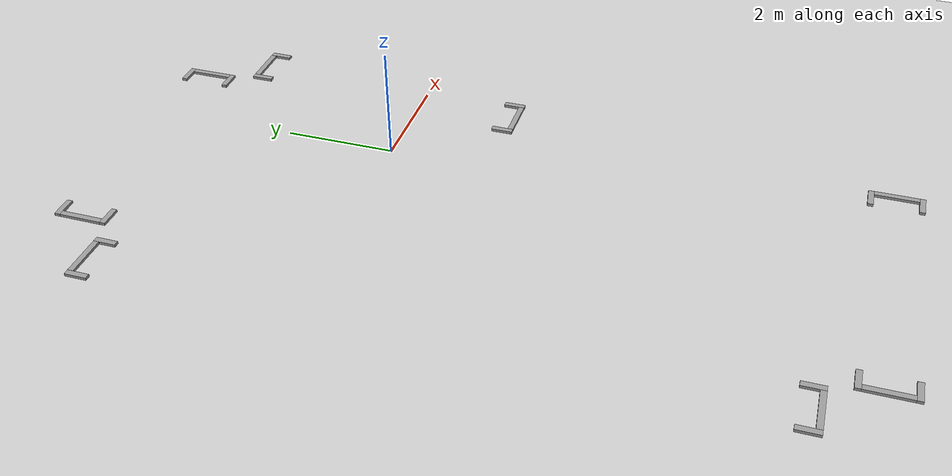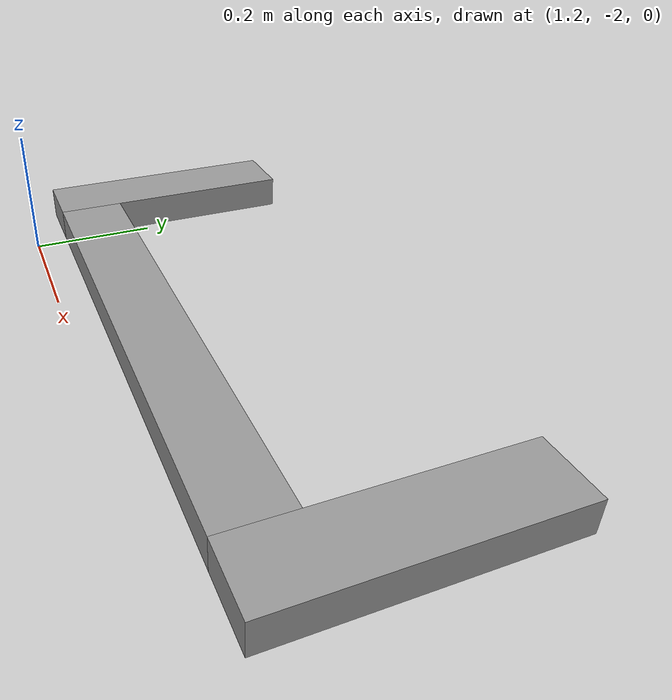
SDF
<sdf version="1.6">
 <world name="default">
  <physics type="ode">
   <max_step_size>0.002</max_step_size>
   <real_time_factor>1</real_time_factor>
   <real_time_update_rate>1000</real_time_update_rate>
   <ode>
    <solver><iters>75</iters><island_threads>4</island_threads></solver>
    <constraints><contact_surface_layer>0.005</contact_surface_layer></constraints>
   </ode>
  </physics>
  <light name="light0" type="directional">
   <pose>0 -18.818 8 0.75 -0 0</pose>
   <diffuse>0.5 0.5 0.5 1</diffuse>
   <specular>0.1 0.1 0.1 1</specular>
   <direction>0.1 0.1 -0.9</direction>
   <attenuation>
    <range>20</range>
    <constant>0.5</constant>
    <linear>0.01</linear>
    <quadratic>0.001</quadratic>
   </attenuation>
   <cast_shadows>0</cast_shadows>
  </light>
  <light name="light3" type="directional">
   <pose>3.9239 1.64974 4 0 1.2 0</pose>
   <diffuse>0.5 0.5 0.5 1</diffuse>
   <specular>0.1 0.1 0.1 1</specular>
   <direction>0.1 0.1 -0.9</direction>
   <attenuation>
    <range>20</range>
    <constant>0.5</constant>
    <linear>0.01</linear>
    <quadratic>0.001</quadratic>
   </attenuation>
   <cast_shadows>0</cast_shadows>
  </light>
  <light name="light5" type="directional">
   <pose>0.454419 12.4783 5 -0.8 0 0</pose>
   <diffuse>0.5 0.5 0.5 1</diffuse>
   <specular>0.1 0.1 0.1 1</specular>
   <direction>0.1 0.1 -0.9</direction>
   <attenuation>
    <range>20</range>
    <constant>0.5</constant>
    <linear>0.01</linear>
    <quadratic>0.001</quadratic>
   </attenuation>
   <cast_shadows>0</cast_shadows>
  </light>
  <scene>
   <shadows>false</shadows>
   <ambient>0.5 0.5 0.5 1.0</ambient>
   <grid>false</grid>
   <sky><time>22</time><sunrise>20</sunrise><sunset>21</sunset><clouds><humidity>0</humidity></clouds></sky>
  </scene>
  <include><uri>model://ground_plane</uri></include>
  <include><uri>model://rack_base</uri><name>rack_base</name><pose>1.421 4.35 0.05 0 -0 -1.57</pose></include>
  <plugin name="gazebo_link_attacher" filename="libgazebo_link_attacher.so"/>
  <plugin name="gazebo_link_ur5_attacher" filename="libgazebo_link_ur5_attacher.so"/>
 </world>
</sdf>

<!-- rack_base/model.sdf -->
<sdf version='1.7'>
  <model name='rack_base'>
    <link name='link'>
      <inertial>
        <pose>0 0 0 0 -0.0 0.0</pose>
        <mass>1.87</mass>
        <inertia>
          <ixx>0.01857</ixx>
          <ixy>0</ixy>
          <ixz>0</ixz>
          <iyy>0.015598</iyy>
          <iyz>0</iyz>
          <izz>0.00305</izz>
        </inertia>
      </inertial>
      <self_collide>0</self_collide>
      <enable_wind>0</enable_wind>
      <kinematic>0</kinematic>
      <pose>0 -0.154224 0 0 -0 0</pose>
      <gravity>1</gravity>
      <visual name='visual_3'>
        <cast_shadows>0</cast_shadows>
        <geometry>
          <box>
            <size>0.1 0.39 0.05</size>
          </box>
        </geometry>
        <material>
          <lighting>1</lighting>
          <script>
            <uri>file://media/materials/scripts/gazebo.material</uri>
            <name>Gazebo/Grey</name>
          </script>
          <shader type='pixel'>
            <normal_map>__default__</normal_map>
          </shader>
          <ambient>0.3 0.3 0.3 1</ambient>
          <diffuse>0.7 0.7 0.7 1</diffuse>
          <specular>0.01 0.01 0.01 1</specular>
          <emissive>0 0 0 1</emissive>
        </material>
        <pose>0.43 0.01 0 0 -0 0</pose>
        <transparency>0</transparency>
      </visual>
      <visual name='visual_4'>
        <cast_shadows>0</cast_shadows>
        <geometry>
          <box>
            <size>0.1 0.39 0.05</size>
          </box>
        </geometry>
        <material>
          <lighting>1</lighting>
          <script>
            <uri>file://media/materials/scripts/gazebo.material</uri>
            <name>Gazebo/Grey</name>
          </script>
          <shader type='pixel'>
            <normal_map>__default__</normal_map>
          </shader>
          <ambient>0.3 0.3 0.3 1</ambient>
          <diffuse>0.7 0.7 0.7 1</diffuse>
          <specular>0.01 0.01 0.01 1</specular>
          <emissive>0 0 0 1</emissive>
        </material>
        <pose>-0.43 0.01 0 0 -0 0</pose>
        <transparency>0</transparency>
      </visual>
      <visual name='visual_1'>
        <cast_shadows>0</cast_shadows>
        <geometry>
          <box>
            <size>0.76 0.1 0.05</size>
          </box>
        </geometry>
        <material>
          <lighting>1</lighting>
          <script>
            <uri>file://media/materials/scripts/gazebo.material</uri>
            <name>Gazebo/Grey</name>
          </script>
          <shader type='pixel'>
            <normal_map>__default__</normal_map>
          </shader>
          <ambient>0.3 0.3 0.3 1</ambient>
          <diffuse>0.7 0.7 0.7 1</diffuse>
          <specular>0.01 0.01 0.01 1</specular>
          <emissive>0 0 0 1</emissive>
        </material>
        <pose>0 0.155 0 0 -0 0</pose>
        <transparency>0</transparency>
      </visual>
      <collision name='collision_7'>
        <laser_retro>0</laser_retro>
        <max_contacts>10</max_contacts>
        <pose>0.43 0.01 0 0 -0 0</pose>
        <geometry>
          <box>
            <size>0.1 0.39 0.05</size>
          </box>
        </geometry>
        <surface>
          <friction>
            <ode>
              <mu>1</mu>
              <mu2>1</mu2>
              <fdir1>0 0 0</fdir1>
              <slip1>0</slip1>
              <slip2>0</slip2>
            </ode>
            <torsional>
              <coefficient>1</coefficient>
              <patch_radius>0</patch_radius>
              <surface_radius>0</surface_radius>
              <use_patch_radius>1</use_patch_radius>
              <ode>
                <slip>0</slip>
              </ode>
            </torsional>
          </friction>
          <bounce>
            <restitution_coefficient>0</restitution_coefficient>
            <threshold>1e+06</threshold>
          </bounce>
          <contact>
            <collide_without_contact>0</collide_without_contact>
            <collide_without_contact_bitmask>1</collide_without_contact_bitmask>
            <collide_bitmask>1</collide_bitmask>
            <ode>
              <soft_cfm>0</soft_cfm>
              <soft_erp>0.2</soft_erp>
              <kp>1e+13</kp>
              <kd>1</kd>
              <max_vel>0.01</max_vel>
              <min_depth>0</min_depth>
            </ode>
            <bullet>
              <split_impulse>1</split_impulse>
              <split_impulse_penetration_threshold>-0.01</split_impulse_penetration_threshold>
              <soft_cfm>0</soft_cfm>
              <soft_erp>0.2</soft_erp>
              <kp>1e+13</kp>
              <kd>1</kd>
            </bullet>
          </contact>
        </surface>
      </collision>
      <collision name='collision_8'>
        <laser_retro>0</laser_retro>
        <max_contacts>10</max_contacts>
        <pose>-0.43 0.01 0 0 -0 0</pose>
        <geometry>
          <box>
            <size>0.1 0.39 0.05</size>
          </box>
        </geometry>
        <surface>
          <friction>
            <ode>
              <mu>1</mu>
              <mu2>1</mu2>
              <fdir1>0 0 0</fdir1>
              <slip1>0</slip1>
              <slip2>0</slip2>
            </ode>
            <torsional>
              <coefficient>1</coefficient>
              <patch_radius>0</patch_radius>
              <surface_radius>0</surface_radius>
              <use_patch_radius>1</use_patch_radius>
              <ode>
                <slip>0</slip>
              </ode>
            </torsional>
          </friction>
          <bounce>
            <restitution_coefficient>0</restitution_coefficient>
            <threshold>1e+06</threshold>
          </bounce>
          <contact>
            <collide_without_contact>0</collide_without_contact>
            <collide_without_contact_bitmask>1</collide_without_contact_bitmask>
            <collide_bitmask>1</collide_bitmask>
            <ode>
              <soft_cfm>0</soft_cfm>
              <soft_erp>0.2</soft_erp>
              <kp>1e+13</kp>
              <kd>1</kd>
              <max_vel>0.01</max_vel>
              <min_depth>0</min_depth>
            </ode>
            <bullet>
              <split_impulse>1</split_impulse>
              <split_impulse_penetration_threshold>-0.01</split_impulse_penetration_threshold>
              <soft_cfm>0</soft_cfm>
              <soft_erp>0.2</soft_erp>
              <kp>1e+13</kp>
              <kd>1</kd>
            </bullet>
          </contact>
        </surface>
      </collision>
      <collision name='collision_6'>
        <laser_retro>0</laser_retro>
        <max_contacts>10</max_contacts>
        <pose>0 0.155 0 0 -0 0</pose>
        <geometry>
          <box>
            <size>0.76 0.1 0.05</size>
          </box>
        </geometry>
        <surface>
          <friction>
            <ode>
              <mu>1</mu>
              <mu2>1</mu2>
              <fdir1>0 0 0</fdir1>
              <slip1>0</slip1>
              <slip2>0</slip2>
            </ode>
            <torsional>
              <coefficient>1</coefficient>
              <patch_radius>0</patch_radius>
              <surface_radius>0</surface_radius>
              <use_patch_radius>1</use_patch_radius>
              <ode>
                <slip>0</slip>
              </ode>
            </torsional>
          </friction>
          <bounce>
            <restitution_coefficient>0</restitution_coefficient>
            <threshold>1e+06</threshold>
          </bounce>
          <contact>
            <collide_without_contact>0</collide_without_contact>
            <collide_without_contact_bitmask>1</collide_without_contact_bitmask>
            <collide_bitmask>1</collide_bitmask>
            <ode>
              <soft_cfm>0</soft_cfm>
              <soft_erp>0.2</soft_erp>
              <kp>1e+13</kp>
              <kd>1</kd>
              <max_vel>0.01</max_vel>
              <min_depth>0</min_depth>
            </ode>
            <bullet>
              <split_impulse>1</split_impulse>
              <split_impulse_penetration_threshold>-0.01</split_impulse_penetration_threshold>
              <soft_cfm>0</soft_cfm>
              <soft_erp>0.2</soft_erp>
              <kp>1e+13</kp>
              <kd>1</kd>
            </bullet>
          </contact>
        </surface>
      </collision>
    </link>
    <link name='link_clone'>
      <inertial>
        <pose>0 0 0 0 -0 0</pose>
        <mass>1.87</mass>
        <inertia>
          <ixx>0.01857</ixx>
          <ixy>0</ixy>
          <ixz>0</ixz>
          <iyy>0.015598</iyy>
          <iyz>0</iyz>
          <izz>0.00305</izz>
        </inertia>
      </inertial>
      <self_collide>0</self_collide>
      <enable_wind>0</enable_wind>
      <kinematic>0</kinematic>
      <pose>1.04088 0.608999 0 0 -0 1.57</pose>
      <gravity>1</gravity>
      <visual name='visual_1'>
        <cast_shadows>0</cast_shadows>
        <geometry>
          <box>
            <size>0.76 0.1 0.05</size>
          </box>
        </geometry>
        <material>
          <lighting>1</lighting>
          <script>
            <uri>file://media/materials/scripts/gazebo.material</uri>
            <name>Gazebo/Grey</name>
          </script>
          <shader type='pixel'>
            <normal_map>__default__</normal_map>
          </shader>
          <ambient>0.3 0.3 0.3 1</ambient>
          <diffuse>0.7 0.7 0.7 1</diffuse>
          <specular>0.01 0.01 0.01 1</specular>
          <emissive>0 0 0 1</emissive>
        </material>
        <pose>0 0.155 0 0 -0 0</pose>
        <transparency>0</transparency>
      </visual>
      <visual name='visual_3'>
        <cast_shadows>0</cast_shadows>
        <geometry>
          <box>
            <size>0.1 0.39 0.05</size>
          </box>
        </geometry>
        <material>
          <lighting>1</lighting>
          <script>
            <uri>file://media/materials/scripts/gazebo.material</uri>
            <name>Gazebo/Grey</name>
          </script>
          <shader type='pixel'>
            <normal_map>__default__</normal_map>
          </shader>
          <ambient>0.3 0.3 0.3 1</ambient>
          <diffuse>0.7 0.7 0.7 1</diffuse>
          <specular>0.01 0.01 0.01 1</specular>
          <emissive>0 0 0 1</emissive>
        </material>
        <pose>0.43 0.01 0 0 -0 0</pose>
        <transparency>0</transparency>
      </visual>
      <visual name='visual_4'>
        <cast_shadows>0</cast_shadows>
        <geometry>
          <box>
            <size>0.1 0.39 0.05</size>
          </box>
        </geometry>
        <material>
          <lighting>1</lighting>
          <script>
            <uri>file://media/materials/scripts/gazebo.material</uri>
            <name>Gazebo/Grey</name>
          </script>
          <shader type='pixel'>
            <normal_map>__default__</normal_map>
          </shader>
          <ambient>0.3 0.3 0.3 1</ambient>
          <diffuse>0.7 0.7 0.7 1</diffuse>
          <specular>0.01 0.01 0.01 1</specular>
          <emissive>0 0 0 1</emissive>
        </material>
        <pose>-0.43 0.01 0 0 -0 0</pose>
        <transparency>0</transparency>
      </visual>
      <collision name='collision_7'>
        <laser_retro>0</laser_retro>
        <max_contacts>10</max_contacts>
        <pose>0.43 0.01 0 0 -0 0</pose>
        <geometry>
          <box>
            <size>0.1 0.39 0.05</size>
          </box>
        </geometry>
        <surface>
          <friction>
            <ode>
              <mu>1</mu>
              <mu2>1</mu2>
              <fdir1>0 0 0</fdir1>
              <slip1>0</slip1>
              <slip2>0</slip2>
            </ode>
            <torsional>
              <coefficient>1</coefficient>
              <patch_radius>0</patch_radius>
              <surface_radius>0</surface_radius>
              <use_patch_radius>1</use_patch_radius>
              <ode>
                <slip>0</slip>
              </ode>
            </torsional>
          </friction>
          <bounce>
            <restitution_coefficient>0</restitution_coefficient>
            <threshold>1e+06</threshold>
          </bounce>
          <contact>
            <collide_without_contact>0</collide_without_contact>
            <collide_without_contact_bitmask>1</collide_without_contact_bitmask>
            <collide_bitmask>1</collide_bitmask>
            <ode>
              <soft_cfm>0</soft_cfm>
              <soft_erp>0.2</soft_erp>
              <kp>1e+13</kp>
              <kd>1</kd>
              <max_vel>0.01</max_vel>
              <min_depth>0</min_depth>
            </ode>
            <bullet>
              <split_impulse>1</split_impulse>
              <split_impulse_penetration_threshold>-0.01</split_impulse_penetration_threshold>
              <soft_cfm>0</soft_cfm>
              <soft_erp>0.2</soft_erp>
              <kp>1e+13</kp>
              <kd>1</kd>
            </bullet>
          </contact>
        </surface>
      </collision>
      <collision name='collision_8'>
        <laser_retro>0</laser_retro>
        <max_contacts>10</max_contacts>
        <pose>-0.43 0.01 0 0 -0 0</pose>
        <geometry>
          <box>
            <size>0.1 0.39 0.05</size>
          </box>
        </geometry>
        <surface>
          <friction>
            <ode>
              <mu>1</mu>
              <mu2>1</mu2>
              <fdir1>0 0 0</fdir1>
              <slip1>0</slip1>
              <slip2>0</slip2>
            </ode>
            <torsional>
              <coefficient>1</coefficient>
              <patch_radius>0</patch_radius>
              <surface_radius>0</surface_radius>
              <use_patch_radius>1</use_patch_radius>
              <ode>
                <slip>0</slip>
              </ode>
            </torsional>
          </friction>
          <bounce>
            <restitution_coefficient>0</restitution_coefficient>
            <threshold>1e+06</threshold>
          </bounce>
          <contact>
            <collide_without_contact>0</collide_without_contact>
            <collide_without_contact_bitmask>1</collide_without_contact_bitmask>
            <collide_bitmask>1</collide_bitmask>
            <ode>
              <soft_cfm>0</soft_cfm>
              <soft_erp>0.2</soft_erp>
              <kp>1e+13</kp>
              <kd>1</kd>
              <max_vel>0.01</max_vel>
              <min_depth>0</min_depth>
            </ode>
            <bullet>
              <split_impulse>1</split_impulse>
              <split_impulse_penetration_threshold>-0.01</split_impulse_penetration_threshold>
              <soft_cfm>0</soft_cfm>
              <soft_erp>0.2</soft_erp>
              <kp>1e+13</kp>
              <kd>1</kd>
            </bullet>
          </contact>
        </surface>
      </collision>
      <collision name='collision_6'>
        <laser_retro>0</laser_retro>
        <max_contacts>10</max_contacts>
        <pose>0 0.155 0 0 -0 0</pose>
        <geometry>
          <box>
            <size>0.76 0.1 0.05</size>
          </box>
        </geometry>
        <surface>
          <friction>
            <ode>
              <mu>1</mu>
              <mu2>1</mu2>
              <fdir1>0 0 0</fdir1>
              <slip1>0</slip1>
              <slip2>0</slip2>
            </ode>
            <torsional>
              <coefficient>1</coefficient>
              <patch_radius>0</patch_radius>
              <surface_radius>0</surface_radius>
              <use_patch_radius>1</use_patch_radius>
              <ode>
                <slip>0</slip>
              </ode>
            </torsional>
          </friction>
          <bounce>
            <restitution_coefficient>0</restitution_coefficient>
            <threshold>1e+06</threshold>
          </bounce>
          <contact>
            <collide_without_contact>0</collide_without_contact>
            <collide_without_contact_bitmask>1</collide_without_contact_bitmask>
            <collide_bitmask>1</collide_bitmask>
            <ode>
              <soft_cfm>0</soft_cfm>
              <soft_erp>0.2</soft_erp>
              <kp>1e+13</kp>
              <kd>1</kd>
              <max_vel>0.01</max_vel>
              <min_depth>0</min_depth>
            </ode>
            <bullet>
              <split_impulse>1</split_impulse>
              <split_impulse_penetration_threshold>-0.01</split_impulse_penetration_threshold>
              <soft_cfm>0</soft_cfm>
              <soft_erp>0.2</soft_erp>
              <kp>1e+13</kp>
              <kd>1</kd>
            </bullet>
          </contact>
        </surface>
      </collision>
    </link>
    <link name='link_clone_clone'>
      <inertial>
        <pose>0 0 0 0 -0 0</pose>
        <mass>1.87</mass>
        <inertia>
          <ixx>0.01857</ixx>
          <ixy>0</ixy>
          <ixz>0</ixz>
          <iyy>0.015598</iyy>
          <iyz>0</iyz>
          <izz>0.00305</izz>
        </inertia>
      </inertial>
      <self_collide>0</self_collide>
      <enable_wind>0</enable_wind>
      <kinematic>0</kinematic>
      <pose>0.063792 -4.66838 0 0 -0 3.14</pose>
      <gravity>1</gravity>
      <visual name='visual_3'>
        <cast_shadows>0</cast_shadows>
        <geometry>
          <box>
            <size>0.1 0.39 0.05</size>
          </box>
        </geometry>
        <material>
          <lighting>1</lighting>
          <script>
            <uri>file://media/materials/scripts/gazebo.material</uri>
            <name>Gazebo/Grey</name>
          </script>
          <shader type='pixel'>
            <normal_map>__default__</normal_map>
          </shader>
          <ambient>0.3 0.3 0.3 1</ambient>
          <diffuse>0.7 0.7 0.7 1</diffuse>
          <specular>0.01 0.01 0.01 1</specular>
          <emissive>0 0 0 1</emissive>
        </material>
        <pose>0.43 0.01 0 0 -0 0</pose>
        <transparency>0</transparency>
      </visual>
      <visual name='visual_1'>
        <cast_shadows>0</cast_shadows>
        <geometry>
          <box>
            <size>0.76 0.1 0.05</size>
          </box>
        </geometry>
        <material>
          <lighting>1</lighting>
          <script>
            <uri>file://media/materials/scripts/gazebo.material</uri>
            <name>Gazebo/Grey</name>
          </script>
          <shader type='pixel'>
            <normal_map>__default__</normal_map>
          </shader>
          <ambient>0.3 0.3 0.3 1</ambient>
          <diffuse>0.7 0.7 0.7 1</diffuse>
          <specular>0.01 0.01 0.01 1</specular>
          <emissive>0 0 0 1</emissive>
        </material>
        <pose>0 0.155 0 0 -0 0</pose>
        <transparency>0</transparency>
      </visual>
      <visual name='visual_4'>
        <cast_shadows>0</cast_shadows>
        <geometry>
          <box>
            <size>0.1 0.39 0.05</size>
          </box>
        </geometry>
        <material>
          <lighting>1</lighting>
          <script>
            <uri>file://media/materials/scripts/gazebo.material</uri>
            <name>Gazebo/Grey</name>
          </script>
          <shader type='pixel'>
            <normal_map>__default__</normal_map>
          </shader>
          <ambient>0.3 0.3 0.3 1</ambient>
          <diffuse>0.7 0.7 0.7 1</diffuse>
          <specular>0.01 0.01 0.01 1</specular>
          <emissive>0 0 0 1</emissive>
        </material>
        <pose>-0.43 0.01 0 0 -0 0</pose>
        <transparency>0</transparency>
      </visual>
      <collision name='collision_8'>
        <laser_retro>0</laser_retro>
        <max_contacts>10</max_contacts>
        <pose>-0.43 0.01 0 0 -0 0</pose>
        <geometry>
          <box>
            <size>0.1 0.39 0.05</size>
          </box>
        </geometry>
        <surface>
          <friction>
            <ode>
              <mu>1</mu>
              <mu2>1</mu2>
              <fdir1>0 0 0</fdir1>
              <slip1>0</slip1>
              <slip2>0</slip2>
            </ode>
            <torsional>
              <coefficient>1</coefficient>
              <patch_radius>0</patch_radius>
              <surface_radius>0</surface_radius>
              <use_patch_radius>1</use_patch_radius>
              <ode>
                <slip>0</slip>
              </ode>
            </torsional>
          </friction>
          <bounce>
            <restitution_coefficient>0</restitution_coefficient>
            <threshold>1e+06</threshold>
          </bounce>
          <contact>
            <collide_without_contact>0</collide_without_contact>
            <collide_without_contact_bitmask>1</collide_without_contact_bitmask>
            <collide_bitmask>1</collide_bitmask>
            <ode>
              <soft_cfm>0</soft_cfm>
              <soft_erp>0.2</soft_erp>
              <kp>1e+13</kp>
              <kd>1</kd>
              <max_vel>0.01</max_vel>
              <min_depth>0</min_depth>
            </ode>
            <bullet>
              <split_impulse>1</split_impulse>
              <split_impulse_penetration_threshold>-0.01</split_impulse_penetration_threshold>
              <soft_cfm>0</soft_cfm>
              <soft_erp>0.2</soft_erp>
              <kp>1e+13</kp>
              <kd>1</kd>
            </bullet>
          </contact>
        </surface>
      </collision>
      <collision name='collision_7'>
        <laser_retro>0</laser_retro>
        <max_contacts>10</max_contacts>
        <pose>0.43 0.01 0 0 -0 0</pose>
        <geometry>
          <box>
            <size>0.1 0.39 0.05</size>
          </box>
        </geometry>
        <surface>
          <friction>
            <ode>
              <mu>1</mu>
              <mu2>1</mu2>
              <fdir1>0 0 0</fdir1>
              <slip1>0</slip1>
              <slip2>0</slip2>
            </ode>
            <torsional>
              <coefficient>1</coefficient>
              <patch_radius>0</patch_radius>
              <surface_radius>0</surface_radius>
              <use_patch_radius>1</use_patch_radius>
              <ode>
                <slip>0</slip>
              </ode>
            </torsional>
          </friction>
          <bounce>
            <restitution_coefficient>0</restitution_coefficient>
            <threshold>1e+06</threshold>
          </bounce>
          <contact>
            <collide_without_contact>0</collide_without_contact>
            <collide_without_contact_bitmask>1</collide_without_contact_bitmask>
            <collide_bitmask>1</collide_bitmask>
            <ode>
              <soft_cfm>0</soft_cfm>
              <soft_erp>0.2</soft_erp>
              <kp>1e+13</kp>
              <kd>1</kd>
              <max_vel>0.01</max_vel>
              <min_depth>0</min_depth>
            </ode>
            <bullet>
              <split_impulse>1</split_impulse>
              <split_impulse_penetration_threshold>-0.01</split_impulse_penetration_threshold>
              <soft_cfm>0</soft_cfm>
              <soft_erp>0.2</soft_erp>
              <kp>1e+13</kp>
              <kd>1</kd>
            </bullet>
          </contact>
        </surface>
      </collision>
      <collision name='collision_6'>
        <laser_retro>0</laser_retro>
        <max_contacts>10</max_contacts>
        <pose>0 0.155 0 0 -0 0</pose>
        <geometry>
          <box>
            <size>0.76 0.1 0.05</size>
          </box>
        </geometry>
        <surface>
          <friction>
            <ode>
              <mu>1</mu>
              <mu2>1</mu2>
              <fdir1>0 0 0</fdir1>
              <slip1>0</slip1>
              <slip2>0</slip2>
            </ode>
            <torsional>
              <coefficient>1</coefficient>
              <patch_radius>0</patch_radius>
              <surface_radius>0</surface_radius>
              <use_patch_radius>1</use_patch_radius>
              <ode>
                <slip>0</slip>
              </ode>
            </torsional>
          </friction>
          <bounce>
            <restitution_coefficient>0</restitution_coefficient>
            <threshold>1e+06</threshold>
          </bounce>
          <contact>
            <collide_without_contact>0</collide_without_contact>
            <collide_without_contact_bitmask>1</collide_without_contact_bitmask>
            <collide_bitmask>1</collide_bitmask>
            <ode>
              <soft_cfm>0</soft_cfm>
              <soft_erp>0.2</soft_erp>
              <kp>1e+13</kp>
              <kd>1</kd>
              <max_vel>0.01</max_vel>
              <min_depth>0</min_depth>
            </ode>
            <bullet>
              <split_impulse>1</split_impulse>
              <split_impulse_penetration_threshold>-0.01</split_impulse_penetration_threshold>
              <soft_cfm>0</soft_cfm>
              <soft_erp>0.2</soft_erp>
              <kp>1e+13</kp>
              <kd>1</kd>
            </bullet>
          </contact>
        </surface>
      </collision>
    </link>
    <link name='link_clone_clone_0'>
      <inertial>
        <pose>0 0 0 0 -0 0</pose>
        <mass>1.87</mass>
        <inertia>
          <ixx>0.01857</ixx>
          <ixy>0</ixy>
          <ixz>0</ixz>
          <iyy>0.015598</iyy>
          <iyz>0</iyz>
          <izz>0.00305</izz>
        </inertia>
      </inertial>
      <self_collide>0</self_collide>
      <enable_wind>0</enable_wind>
      <kinematic>0</kinematic>
      <pose>0.823684 -5.70923 0 0 -0 1.57</pose>
      <gravity>1</gravity>
      <visual name='visual_1'>
        <cast_shadows>0</cast_shadows>
        <geometry>
          <box>
            <size>0.76 0.1 0.05</size>
          </box>
        </geometry>
        <material>
          <lighting>1</lighting>
          <script>
            <uri>file://media/materials/scripts/gazebo.material</uri>
            <name>Gazebo/Grey</name>
          </script>
          <shader type='pixel'>
            <normal_map>__default__</normal_map>
          </shader>
          <ambient>0.3 0.3 0.3 1</ambient>
          <diffuse>0.7 0.7 0.7 1</diffuse>
          <specular>0.01 0.01 0.01 1</specular>
          <emissive>0 0 0 1</emissive>
        </material>
        <pose>0 0.155 0 0 -0 0</pose>
        <transparency>0</transparency>
      </visual>
      <visual name='visual_4'>
        <cast_shadows>0</cast_shadows>
        <geometry>
          <box>
            <size>0.1 0.39 0.05</size>
          </box>
        </geometry>
        <material>
          <lighting>1</lighting>
          <script>
            <uri>file://media/materials/scripts/gazebo.material</uri>
            <name>Gazebo/Grey</name>
          </script>
          <shader type='pixel'>
            <normal_map>__default__</normal_map>
          </shader>
          <ambient>0.3 0.3 0.3 1</ambient>
          <diffuse>0.7 0.7 0.7 1</diffuse>
          <specular>0.01 0.01 0.01 1</specular>
          <emissive>0 0 0 1</emissive>
        </material>
        <pose>-0.43 0.01 0 0 -0 0</pose>
        <transparency>0</transparency>
      </visual>
      <visual name='visual_3'>
        <cast_shadows>0</cast_shadows>
        <geometry>
          <box>
            <size>0.1 0.39 0.05</size>
          </box>
        </geometry>
        <material>
          <lighting>1</lighting>
          <script>
            <uri>file://media/materials/scripts/gazebo.material</uri>
            <name>Gazebo/Grey</name>
          </script>
          <shader type='pixel'>
            <normal_map>__default__</normal_map>
          </shader>
          <ambient>0.3 0.3 0.3 1</ambient>
          <diffuse>0.7 0.7 0.7 1</diffuse>
          <specular>0.01 0.01 0.01 1</specular>
          <emissive>0 0 0 1</emissive>
        </material>
        <pose>0.43 0.01 0 0 -0 0</pose>
        <transparency>0</transparency>
      </visual>
      <collision name='collision_8'>
        <laser_retro>0</laser_retro>
        <max_contacts>10</max_contacts>
        <pose>-0.43 0.01 0 0 -0 0</pose>
        <geometry>
          <box>
            <size>0.1 0.39 0.05</size>
          </box>
        </geometry>
        <surface>
          <friction>
            <ode>
              <mu>1</mu>
              <mu2>1</mu2>
              <fdir1>0 0 0</fdir1>
              <slip1>0</slip1>
              <slip2>0</slip2>
            </ode>
            <torsional>
              <coefficient>1</coefficient>
              <patch_radius>0</patch_radius>
              <surface_radius>0</surface_radius>
              <use_patch_radius>1</use_patch_radius>
              <ode>
                <slip>0</slip>
              </ode>
            </torsional>
          </friction>
          <bounce>
            <restitution_coefficient>0</restitution_coefficient>
            <threshold>1e+06</threshold>
          </bounce>
          <contact>
            <collide_without_contact>0</collide_without_contact>
            <collide_without_contact_bitmask>1</collide_without_contact_bitmask>
            <collide_bitmask>1</collide_bitmask>
            <ode>
              <soft_cfm>0</soft_cfm>
              <soft_erp>0.2</soft_erp>
              <kp>1e+13</kp>
              <kd>1</kd>
              <max_vel>0.01</max_vel>
              <min_depth>0</min_depth>
            </ode>
            <bullet>
              <split_impulse>1</split_impulse>
              <split_impulse_penetration_threshold>-0.01</split_impulse_penetration_threshold>
              <soft_cfm>0</soft_cfm>
              <soft_erp>0.2</soft_erp>
              <kp>1e+13</kp>
              <kd>1</kd>
            </bullet>
          </contact>
        </surface>
      </collision>
      <collision name='collision_6'>
        <laser_retro>0</laser_retro>
        <max_contacts>10</max_contacts>
        <pose>0 0.155 0 0 -0 0</pose>
        <geometry>
          <box>
            <size>0.76 0.1 0.05</size>
          </box>
        </geometry>
        <surface>
          <friction>
            <ode>
              <mu>1</mu>
              <mu2>1</mu2>
              <fdir1>0 0 0</fdir1>
              <slip1>0</slip1>
              <slip2>0</slip2>
            </ode>
            <torsional>
              <coefficient>1</coefficient>
              <patch_radius>0</patch_radius>
              <surface_radius>0</surface_radius>
              <use_patch_radius>1</use_patch_radius>
              <ode>
                <slip>0</slip>
              </ode>
            </torsional>
          </friction>
          <bounce>
            <restitution_coefficient>0</restitution_coefficient>
            <threshold>1e+06</threshold>
          </bounce>
          <contact>
            <collide_without_contact>0</collide_without_contact>
            <collide_without_contact_bitmask>1</collide_without_contact_bitmask>
            <collide_bitmask>1</collide_bitmask>
            <ode>
              <soft_cfm>0</soft_cfm>
              <soft_erp>0.2</soft_erp>
              <kp>1e+13</kp>
              <kd>1</kd>
              <max_vel>0.01</max_vel>
              <min_depth>0</min_depth>
            </ode>
            <bullet>
              <split_impulse>1</split_impulse>
              <split_impulse_penetration_threshold>-0.01</split_impulse_penetration_threshold>
              <soft_cfm>0</soft_cfm>
              <soft_erp>0.2</soft_erp>
              <kp>1e+13</kp>
              <kd>1</kd>
            </bullet>
          </contact>
        </surface>
      </collision>
      <collision name='collision_7'>
        <laser_retro>0</laser_retro>
        <max_contacts>10</max_contacts>
        <pose>0.43 0.01 0 0 -0 0</pose>
        <geometry>
          <box>
            <size>0.1 0.39 0.05</size>
          </box>
        </geometry>
        <surface>
          <friction>
            <ode>
              <mu>1</mu>
              <mu2>1</mu2>
              <fdir1>0 0 0</fdir1>
              <slip1>0</slip1>
              <slip2>0</slip2>
            </ode>
            <torsional>
              <coefficient>1</coefficient>
              <patch_radius>0</patch_radius>
              <surface_radius>0</surface_radius>
              <use_patch_radius>1</use_patch_radius>
              <ode>
                <slip>0</slip>
              </ode>
            </torsional>
          </friction>
          <bounce>
            <restitution_coefficient>0</restitution_coefficient>
            <threshold>1e+06</threshold>
          </bounce>
          <contact>
            <collide_without_contact>0</collide_without_contact>
            <collide_without_contact_bitmask>1</collide_without_contact_bitmask>
            <collide_bitmask>1</collide_bitmask>
            <ode>
              <soft_cfm>0</soft_cfm>
              <soft_erp>0.2</soft_erp>
              <kp>1e+13</kp>
              <kd>1</kd>
              <max_vel>0.01</max_vel>
              <min_depth>0</min_depth>
            </ode>
            <bullet>
              <split_impulse>1</split_impulse>
              <split_impulse_penetration_threshold>-0.01</split_impulse_penetration_threshold>
              <soft_cfm>0</soft_cfm>
              <soft_erp>0.2</soft_erp>
              <kp>1e+13</kp>
              <kd>1</kd>
            </bullet>
          </contact>
        </surface>
      </collision>
    </link>
    <link name='link_clone_clone_1'>
      <inertial>
        <pose>0 0 0 0 -0 0</pose>
        <mass>1.87</mass>
        <inertia>
          <ixx>0.01857</ixx>
          <ixy>0</ixy>
          <ixz>0</ixz>
          <iyy>0.015598</iyy>
          <iyz>0</iyz>
          <izz>0.00305</izz>
        </inertia>
      </inertial>
      <self_collide>0</self_collide>
      <enable_wind>0</enable_wind>
      <kinematic>0</kinematic>
      <pose>13.2129 -0.430131 0 0 -0 0</pose>
      <gravity>1</gravity>
      <visual name='visual_1'>
        <cast_shadows>0</cast_shadows>
        <geometry>
          <box>
            <size>0.76 0.1 0.05</size>
          </box>
        </geometry>
        <material>
          <lighting>1</lighting>
          <script>
            <uri>file://media/materials/scripts/gazebo.material</uri>
            <name>Gazebo/Grey</name>
          </script>
          <shader type='pixel'>
            <normal_map>__default__</normal_map>
          </shader>
          <ambient>0.3 0.3 0.3 1</ambient>
          <diffuse>0.7 0.7 0.7 1</diffuse>
          <specular>0.01 0.01 0.01 1</specular>
          <emissive>0 0 0 1</emissive>
        </material>
        <pose>0 0.155 0 0 -0 0</pose>
        <transparency>0</transparency>
      </visual>
      <visual name='visual_3'>
        <cast_shadows>0</cast_shadows>
        <geometry>
          <box>
            <size>0.1 0.39 0.05</size>
          </box>
        </geometry>
        <material>
          <lighting>1</lighting>
          <script>
            <uri>file://media/materials/scripts/gazebo.material</uri>
            <name>Gazebo/Grey</name>
          </script>
          <shader type='pixel'>
            <normal_map>__default__</normal_map>
          </shader>
          <ambient>0.3 0.3 0.3 1</ambient>
          <diffuse>0.7 0.7 0.7 1</diffuse>
          <specular>0.01 0.01 0.01 1</specular>
          <emissive>0 0 0 1</emissive>
        </material>
        <pose>0.43 0.01 0 0 -0 0</pose>
        <transparency>0</transparency>
      </visual>
      <visual name='visual_4'>
        <cast_shadows>0</cast_shadows>
        <geometry>
          <box>
            <size>0.1 0.39 0.05</size>
          </box>
        </geometry>
        <material>
          <lighting>1</lighting>
          <script>
            <uri>file://media/materials/scripts/gazebo.material</uri>
            <name>Gazebo/Grey</name>
          </script>
          <shader type='pixel'>
            <normal_map>__default__</normal_map>
          </shader>
          <ambient>0.3 0.3 0.3 1</ambient>
          <diffuse>0.7 0.7 0.7 1</diffuse>
          <specular>0.01 0.01 0.01 1</specular>
          <emissive>0 0 0 1</emissive>
        </material>
        <pose>-0.43 0.01 0 0 -0 0</pose>
        <transparency>0</transparency>
      </visual>
      <collision name='collision_7'>
        <laser_retro>0</laser_retro>
        <max_contacts>10</max_contacts>
        <pose>0.43 0.01 0 0 -0 0</pose>
        <geometry>
          <box>
            <size>0.1 0.39 0.05</size>
          </box>
        </geometry>
        <surface>
          <friction>
            <ode>
              <mu>1</mu>
              <mu2>1</mu2>
              <fdir1>0 0 0</fdir1>
              <slip1>0</slip1>
              <slip2>0</slip2>
            </ode>
            <torsional>
              <coefficient>1</coefficient>
              <patch_radius>0</patch_radius>
              <surface_radius>0</surface_radius>
              <use_patch_radius>1</use_patch_radius>
              <ode>
                <slip>0</slip>
              </ode>
            </torsional>
          </friction>
          <bounce>
            <restitution_coefficient>0</restitution_coefficient>
            <threshold>1e+06</threshold>
          </bounce>
          <contact>
            <collide_without_contact>0</collide_without_contact>
            <collide_without_contact_bitmask>1</collide_without_contact_bitmask>
            <collide_bitmask>1</collide_bitmask>
            <ode>
              <soft_cfm>0</soft_cfm>
              <soft_erp>0.2</soft_erp>
              <kp>1e+13</kp>
              <kd>1</kd>
              <max_vel>0.01</max_vel>
              <min_depth>0</min_depth>
            </ode>
            <bullet>
              <split_impulse>1</split_impulse>
              <split_impulse_penetration_threshold>-0.01</split_impulse_penetration_threshold>
              <soft_cfm>0</soft_cfm>
              <soft_erp>0.2</soft_erp>
              <kp>1e+13</kp>
              <kd>1</kd>
            </bullet>
          </contact>
        </surface>
      </collision>
      <collision name='collision_8'>
        <laser_retro>0</laser_retro>
        <max_contacts>10</max_contacts>
        <pose>-0.43 0.01 0 0 -0 0</pose>
        <geometry>
          <box>
            <size>0.1 0.39 0.05</size>
          </box>
        </geometry>
        <surface>
          <friction>
            <ode>
              <mu>1</mu>
              <mu2>1</mu2>
              <fdir1>0 0 0</fdir1>
              <slip1>0</slip1>
              <slip2>0</slip2>
            </ode>
            <torsional>
              <coefficient>1</coefficient>
              <patch_radius>0</patch_radius>
              <surface_radius>0</surface_radius>
              <use_patch_radius>1</use_patch_radius>
              <ode>
                <slip>0</slip>
              </ode>
            </torsional>
          </friction>
          <bounce>
            <restitution_coefficient>0</restitution_coefficient>
            <threshold>1e+06</threshold>
          </bounce>
          <contact>
            <collide_without_contact>0</collide_without_contact>
            <collide_without_contact_bitmask>1</collide_without_contact_bitmask>
            <collide_bitmask>1</collide_bitmask>
            <ode>
              <soft_cfm>0</soft_cfm>
              <soft_erp>0.2</soft_erp>
              <kp>1e+13</kp>
              <kd>1</kd>
              <max_vel>0.01</max_vel>
              <min_depth>0</min_depth>
            </ode>
            <bullet>
              <split_impulse>1</split_impulse>
              <split_impulse_penetration_threshold>-0.01</split_impulse_penetration_threshold>
              <soft_cfm>0</soft_cfm>
              <soft_erp>0.2</soft_erp>
              <kp>1e+13</kp>
              <kd>1</kd>
            </bullet>
          </contact>
        </surface>
      </collision>
      <collision name='collision_6'>
        <laser_retro>0</laser_retro>
        <max_contacts>10</max_contacts>
        <pose>0 0.155 0 0 -0 0</pose>
        <geometry>
          <box>
            <size>0.76 0.1 0.05</size>
          </box>
        </geometry>
        <surface>
          <friction>
            <ode>
              <mu>1</mu>
              <mu2>1</mu2>
              <fdir1>0 0 0</fdir1>
              <slip1>0</slip1>
              <slip2>0</slip2>
            </ode>
            <torsional>
              <coefficient>1</coefficient>
              <patch_radius>0</patch_radius>
              <surface_radius>0</surface_radius>
              <use_patch_radius>1</use_patch_radius>
              <ode>
                <slip>0</slip>
              </ode>
            </torsional>
          </friction>
          <bounce>
            <restitution_coefficient>0</restitution_coefficient>
            <threshold>1e+06</threshold>
          </bounce>
          <contact>
            <collide_without_contact>0</collide_without_contact>
            <collide_without_contact_bitmask>1</collide_without_contact_bitmask>
            <collide_bitmask>1</collide_bitmask>
            <ode>
              <soft_cfm>0</soft_cfm>
              <soft_erp>0.2</soft_erp>
              <kp>1e+13</kp>
              <kd>1</kd>
              <max_vel>0.01</max_vel>
              <min_depth>0</min_depth>
            </ode>
            <bullet>
              <split_impulse>1</split_impulse>
              <split_impulse_penetration_threshold>-0.01</split_impulse_penetration_threshold>
              <soft_cfm>0</soft_cfm>
              <soft_erp>0.2</soft_erp>
              <kp>1e+13</kp>
              <kd>1</kd>
            </bullet>
          </contact>
        </surface>
      </collision>
    </link>
    <link name='link_clone_clone_2'>
      <inertial>
        <pose>0 0 0 0 -0 0</pose>
        <mass>1.87</mass>
        <inertia>
          <ixx>2.02</ixx>
          <ixy>-8.09</ixy>
          <ixz>1.57</ixz>
          <iyy>0.015598</iyy>
          <iyz>0</iyz>
          <izz>0.00305</izz>
        </inertia>
      </inertial>
      <self_collide>0</self_collide>
      <enable_wind>0</enable_wind>
      <kinematic>0</kinematic>
      <pose>6.100000 0.190000 0 -0 0 4.71</pose>
      <gravity>1</gravity>
      <visual name='visual_1'>
        <cast_shadows>0</cast_shadows>
        <geometry>
          <box>
            <size>0.76 0.1 0.05</size>
          </box>
        </geometry>
        <material>
          <lighting>1</lighting>
          <script>
            <uri>file://media/materials/scripts/gazebo.material</uri>
            <name>Gazebo/Grey</name>
          </script>
          <shader type='pixel'>
            <normal_map>__default__</normal_map>
          </shader>
          <ambient>0.3 0.3 0.3 1</ambient>
          <diffuse>0.7 0.7 0.7 1</diffuse>
          <specular>0.01 0.01 0.01 1</specular>
          <emissive>0 0 0 1</emissive>
        </material>
        <pose>0 0.155 0 0 -0 0</pose>
        <transparency>0</transparency>
      </visual>
      <visual name='visual_3'>
        <cast_shadows>0</cast_shadows>
        <geometry>
          <box>
            <size>0.1 0.39 0.05</size>
          </box>
        </geometry>
        <material>
          <lighting>1</lighting>
          <script>
            <uri>file://media/materials/scripts/gazebo.material</uri>
            <name>Gazebo/Grey</name>
          </script>
          <shader type='pixel'>
            <normal_map>__default__</normal_map>
          </shader>
          <ambient>0.3 0.3 0.3 1</ambient>
          <diffuse>0.7 0.7 0.7 1</diffuse>
          <specular>0.01 0.01 0.01 1</specular>
          <emissive>0 0 0 1</emissive>
        </material>
        <pose>0.43 0.01 0 0 -0 0</pose>
        <transparency>0</transparency>
      </visual>
      <visual name='visual_4'>
        <cast_shadows>0</cast_shadows>
        <geometry>
          <box>
            <size>0.1 0.39 0.05</size>
          </box>
        </geometry>
        <material>
          <lighting>1</lighting>
          <script>
            <uri>file://media/materials/scripts/gazebo.material</uri>
            <name>Gazebo/Grey</name>
          </script>
          <shader type='pixel'>
            <normal_map>__default__</normal_map>
          </shader>
          <ambient>0.3 0.3 0.3 1</ambient>
          <diffuse>0.7 0.7 0.7 1</diffuse>
          <specular>0.01 0.01 0.01 1</specular>
          <emissive>0 0 0 1</emissive>
        </material>
        <pose>-0.43 0.01 0 0 -0 0</pose>
        <transparency>0</transparency>
      </visual>
      <collision name='collision_7'>
        <laser_retro>0</laser_retro>
        <max_contacts>10</max_contacts>
        <pose>0.43 0.01 0 0 -0 0</pose>
        <geometry>
          <box>
            <size>0.1 0.39 0.05</size>
          </box>
        </geometry>
        <surface>
          <friction>
            <ode>
              <mu>1</mu>
              <mu2>1</mu2>
              <fdir1>0 0 0</fdir1>
              <slip1>0</slip1>
              <slip2>0</slip2>
            </ode>
            <torsional>
              <coefficient>1</coefficient>
              <patch_radius>0</patch_radius>
              <surface_radius>0</surface_radius>
              <use_patch_radius>1</use_patch_radius>
              <ode>
                <slip>0</slip>
              </ode>
            </torsional>
          </friction>
          <bounce>
            <restitution_coefficient>0</restitution_coefficient>
            <threshold>1e+06</threshold>
          </bounce>
          <contact>
            <collide_without_contact>0</collide_without_contact>
            <collide_without_contact_bitmask>1</collide_without_contact_bitmask>
            <collide_bitmask>1</collide_bitmask>
            <ode>
              <soft_cfm>0</soft_cfm>
              <soft_erp>0.2</soft_erp>
              <kp>1e+13</kp>
              <kd>1</kd>
              <max_vel>0.01</max_vel>
              <min_depth>0</min_depth>
            </ode>
            <bullet>
              <split_impulse>1</split_impulse>
              <split_impulse_penetration_threshold>-0.01</split_impulse_penetration_threshold>
              <soft_cfm>0</soft_cfm>
              <soft_erp>0.2</soft_erp>
              <kp>1e+13</kp>
              <kd>1</kd>
            </bullet>
          </contact>
        </surface>
      </collision>
      <collision name='collision_8'>
        <laser_retro>0</laser_retro>
        <max_contacts>10</max_contacts>
        <pose>-0.43 0.01 0 0 -0 0</pose>
        <geometry>
          <box>
            <size>0.1 0.39 0.05</size>
          </box>
        </geometry>
        <surface>
          <friction>
            <ode>
              <mu>1</mu>
              <mu2>1</mu2>
              <fdir1>0 0 0</fdir1>
              <slip1>0</slip1>
              <slip2>0</slip2>
            </ode>
            <torsional>
              <coefficient>1</coefficient>
              <patch_radius>0</patch_radius>
              <surface_radius>0</surface_radius>
              <use_patch_radius>1</use_patch_radius>
              <ode>
                <slip>0</slip>
              </ode>
            </torsional>
          </friction>
          <bounce>
            <restitution_coefficient>0</restitution_coefficient>
            <threshold>1e+06</threshold>
          </bounce>
          <contact>
            <collide_without_contact>0</collide_without_contact>
            <collide_without_contact_bitmask>1</collide_without_contact_bitmask>
            <collide_bitmask>1</collide_bitmask>
            <ode>
              <soft_cfm>0</soft_cfm>
              <soft_erp>0.2</soft_erp>
              <kp>1e+13</kp>
              <kd>1</kd>
              <max_vel>0.01</max_vel>
              <min_depth>0</min_depth>
            </ode>
            <bullet>
              <split_impulse>1</split_impulse>
              <split_impulse_penetration_threshold>-0.01</split_impulse_penetration_threshold>
              <soft_cfm>0</soft_cfm>
              <soft_erp>0.2</soft_erp>
              <kp>1e+13</kp>
              <kd>1</kd>
            </bullet>
          </contact>
        </surface>
      </collision>
      <collision name='collision_6'>
        <laser_retro>0</laser_retro>
        <max_contacts>10</max_contacts>
        <pose>0 0.155 0 0 -0 0</pose>
        <geometry>
          <box>
            <size>0.76 0.1 0.05</size>
          </box>
        </geometry>
        <surface>
          <friction>
            <ode>
              <mu>1</mu>
              <mu2>1</mu2>
              <fdir1>0 0 0</fdir1>
              <slip1>0</slip1>
              <slip2>0</slip2>
            </ode>
            <torsional>
              <coefficient>1</coefficient>
              <patch_radius>0</patch_radius>
              <surface_radius>0</surface_radius>
              <use_patch_radius>1</use_patch_radius>
              <ode>
                <slip>0</slip>
              </ode>
            </torsional>
          </friction>
          <bounce>
            <restitution_coefficient>0</restitution_coefficient>
            <threshold>1e+06</threshold>
          </bounce>
          <contact>
            <collide_without_contact>0</collide_without_contact>
            <collide_without_contact_bitmask>1</collide_without_contact_bitmask>
            <collide_bitmask>1</collide_bitmask>
            <ode>
              <soft_cfm>0</soft_cfm>
              <soft_erp>0.2</soft_erp>
              <kp>1e+13</kp>
              <kd>1</kd>
              <max_vel>0.01</max_vel>
              <min_depth>0</min_depth>
            </ode>
            <bullet>
              <split_impulse>1</split_impulse>
              <split_impulse_penetration_threshold>-0.01</split_impulse_penetration_threshold>
              <soft_cfm>0</soft_cfm>
              <soft_erp>0.2</soft_erp>
              <kp>1e+13</kp>
              <kd>1</kd>
            </bullet>
          </contact>
        </surface>
      </collision>
    </link>
    <link name='link_clone_clone_3'>
      <inertial>
        <pose>0 0 0 0 -0 0</pose>
        <mass>1.87</mass>
        <inertia>
          <ixx>0.01857</ixx>
          <ixy>0</ixy>
          <ixz>0</ixz>
          <iyy>0.015598</iyy>
          <iyz>0</iyz>
          <izz>0.00305</izz>
        </inertia>
      </inertial>
      <self_collide>0</self_collide>
      <enable_wind>0</enable_wind>
      <kinematic>0</kinematic>
      <pose>13.2418 -4.89365 0 0 -0 3.14</pose>
      <gravity>1</gravity>
      <visual name='visual_1'>
        <cast_shadows>0</cast_shadows>
        <geometry>
          <box>
            <size>0.76 0.1 0.05</size>
          </box>
        </geometry>
        <material>
          <lighting>1</lighting>
          <script>
            <uri>file://media/materials/scripts/gazebo.material</uri>
            <name>Gazebo/Grey</name>
          </script>
          <shader type='pixel'>
            <normal_map>__default__</normal_map>
          </shader>
          <ambient>0.3 0.3 0.3 1</ambient>
          <diffuse>0.7 0.7 0.7 1</diffuse>
          <specular>0.01 0.01 0.01 1</specular>
          <emissive>0 0 0 1</emissive>
        </material>
        <pose>0 0.155 0 0 -0 0</pose>
        <transparency>0</transparency>
      </visual>
      <visual name='visual_3'>
        <cast_shadows>0</cast_shadows>
        <geometry>
          <box>
            <size>0.1 0.39 0.05</size>
          </box>
        </geometry>
        <material>
          <lighting>1</lighting>
          <script>
            <uri>file://media/materials/scripts/gazebo.material</uri>
            <name>Gazebo/Grey</name>
          </script>
          <shader type='pixel'>
            <normal_map>__default__</normal_map>
          </shader>
          <ambient>0.3 0.3 0.3 1</ambient>
          <diffuse>0.7 0.7 0.7 1</diffuse>
          <specular>0.01 0.01 0.01 1</specular>
          <emissive>0 0 0 1</emissive>
        </material>
        <pose>0.43 0.01 0 0 -0 0</pose>
        <transparency>0</transparency>
      </visual>
      <visual name='visual_4'>
        <cast_shadows>0</cast_shadows>
        <geometry>
          <box>
            <size>0.1 0.39 0.05</size>
          </box>
        </geometry>
        <material>
          <lighting>1</lighting>
          <script>
            <uri>file://media/materials/scripts/gazebo.material</uri>
            <name>Gazebo/Grey</name>
          </script>
          <shader type='pixel'>
            <normal_map>__default__</normal_map>
          </shader>
          <ambient>0.3 0.3 0.3 1</ambient>
          <diffuse>0.7 0.7 0.7 1</diffuse>
          <specular>0.01 0.01 0.01 1</specular>
          <emissive>0 0 0 1</emissive>
        </material>
        <pose>-0.43 0.01 0 0 -0 0</pose>
        <transparency>0</transparency>
      </visual>
      <collision name='collision_7'>
        <laser_retro>0</laser_retro>
        <max_contacts>10</max_contacts>
        <pose>0.43 0.01 0 0 -0 0</pose>
        <geometry>
          <box>
            <size>0.1 0.39 0.05</size>
          </box>
        </geometry>
        <surface>
          <friction>
            <ode>
              <mu>1</mu>
              <mu2>1</mu2>
              <fdir1>0 0 0</fdir1>
              <slip1>0</slip1>
              <slip2>0</slip2>
            </ode>
            <torsional>
              <coefficient>1</coefficient>
              <patch_radius>0</patch_radius>
              <surface_radius>0</surface_radius>
              <use_patch_radius>1</use_patch_radius>
              <ode>
                <slip>0</slip>
              </ode>
            </torsional>
          </friction>
          <bounce>
            <restitution_coefficient>0</restitution_coefficient>
            <threshold>1e+06</threshold>
          </bounce>
          <contact>
            <collide_without_contact>0</collide_without_contact>
            <collide_without_contact_bitmask>1</collide_without_contact_bitmask>
            <collide_bitmask>1</collide_bitmask>
            <ode>
              <soft_cfm>0</soft_cfm>
              <soft_erp>0.2</soft_erp>
              <kp>1e+13</kp>
              <kd>1</kd>
              <max_vel>0.01</max_vel>
              <min_depth>0</min_depth>
            </ode>
            <bullet>
              <split_impulse>1</split_impulse>
              <split_impulse_penetration_threshold>-0.01</split_impulse_penetration_threshold>
              <soft_cfm>0</soft_cfm>
              <soft_erp>0.2</soft_erp>
              <kp>1e+13</kp>
              <kd>1</kd>
            </bullet>
          </contact>
        </surface>
      </collision>
      <collision name='collision_8'>
        <laser_retro>0</laser_retro>
        <max_contacts>10</max_contacts>
        <pose>-0.43 0.01 0 0 -0 0</pose>
        <geometry>
          <box>
            <size>0.1 0.39 0.05</size>
          </box>
        </geometry>
        <surface>
          <friction>
            <ode>
              <mu>1</mu>
              <mu2>1</mu2>
              <fdir1>0 0 0</fdir1>
              <slip1>0</slip1>
              <slip2>0</slip2>
            </ode>
            <torsional>
              <coefficient>1</coefficient>
              <patch_radius>0</patch_radius>
              <surface_radius>0</surface_radius>
              <use_patch_radius>1</use_patch_radius>
              <ode>
                <slip>0</slip>
              </ode>
            </torsional>
          </friction>
          <bounce>
            <restitution_coefficient>0</restitution_coefficient>
            <threshold>1e+06</threshold>
          </bounce>
          <contact>
            <collide_without_contact>0</collide_without_contact>
            <collide_without_contact_bitmask>1</collide_without_contact_bitmask>
            <collide_bitmask>1</collide_bitmask>
            <ode>
              <soft_cfm>0</soft_cfm>
              <soft_erp>0.2</soft_erp>
              <kp>1e+13</kp>
              <kd>1</kd>
              <max_vel>0.01</max_vel>
              <min_depth>0</min_depth>
            </ode>
            <bullet>
              <split_impulse>1</split_impulse>
              <split_impulse_penetration_threshold>-0.01</split_impulse_penetration_threshold>
              <soft_cfm>0</soft_cfm>
              <soft_erp>0.2</soft_erp>
              <kp>1e+13</kp>
              <kd>1</kd>
            </bullet>
          </contact>
        </surface>
      </collision>
      <collision name='collision_6'>
        <laser_retro>0</laser_retro>
        <max_contacts>10</max_contacts>
        <pose>0 0.155 0 0 -0 0</pose>
        <geometry>
          <box>
            <size>0.76 0.1 0.05</size>
          </box>
        </geometry>
        <surface>
          <friction>
            <ode>
              <mu>1</mu>
              <mu2>1</mu2>
              <fdir1>0 0 0</fdir1>
              <slip1>0</slip1>
              <slip2>0</slip2>
            </ode>
            <torsional>
              <coefficient>1</coefficient>
              <patch_radius>0</patch_radius>
              <surface_radius>0</surface_radius>
              <use_patch_radius>1</use_patch_radius>
              <ode>
                <slip>0</slip>
              </ode>
            </torsional>
          </friction>
          <bounce>
            <restitution_coefficient>0</restitution_coefficient>
            <threshold>1e+06</threshold>
          </bounce>
          <contact>
            <collide_without_contact>0</collide_without_contact>
            <collide_without_contact_bitmask>1</collide_without_contact_bitmask>
            <collide_bitmask>1</collide_bitmask>
            <ode>
              <soft_cfm>0</soft_cfm>
              <soft_erp>0.2</soft_erp>
              <kp>1e+13</kp>
              <kd>1</kd>
              <max_vel>0.01</max_vel>
              <min_depth>0</min_depth>
            </ode>
            <bullet>
              <split_impulse>1</split_impulse>
              <split_impulse_penetration_threshold>-0.01</split_impulse_penetration_threshold>
              <soft_cfm>0</soft_cfm>
              <soft_erp>0.2</soft_erp>
              <kp>1e+13</kp>
              <kd>1</kd>
            </bullet>
          </contact>
        </surface>
      </collision>
    </link>
    <link name='link_clone_clone_4'>
      <inertial>
        <pose>0 0 0 0 -0 0</pose>
        <mass>1.87</mass>
        <inertia>
          <ixx>0.01857</ixx>
          <ixy>0</ixy>
          <ixz>0</ixz>
          <iyy>0.015598</iyy>
          <iyz>0</iyz>
          <izz>0.00305</izz>
        </inertia>
      </inertial>
      <self_collide>0</self_collide>
      <enable_wind>0</enable_wind>
      <kinematic>0</kinematic>
      <pose>12.1985 -5.65606 0 0 0 -1.57</pose>
      <gravity>1</gravity>
      <visual name='visual_1'>
        <cast_shadows>0</cast_shadows>
        <geometry>
          <box>
            <size>0.76 0.1 0.05</size>
          </box>
        </geometry>
        <material>
          <lighting>1</lighting>
          <script>
            <uri>file://media/materials/scripts/gazebo.material</uri>
            <name>Gazebo/Grey</name>
          </script>
          <shader type='pixel'>
            <normal_map>__default__</normal_map>
          </shader>
          <ambient>0.3 0.3 0.3 1</ambient>
          <diffuse>0.7 0.7 0.7 1</diffuse>
          <specular>0.01 0.01 0.01 1</specular>
          <emissive>0 0 0 1</emissive>
        </material>
        <pose>0 0.155 0 0 -0 0</pose>
        <transparency>0</transparency>
      </visual>
      <visual name='visual_3'>
        <cast_shadows>0</cast_shadows>
        <geometry>
          <box>
            <size>0.1 0.39 0.05</size>
          </box>
        </geometry>
        <material>
          <lighting>1</lighting>
          <script>
            <uri>file://media/materials/scripts/gazebo.material</uri>
            <name>Gazebo/Grey</name>
          </script>
          <shader type='pixel'>
            <normal_map>__default__</normal_map>
          </shader>
          <ambient>0.3 0.3 0.3 1</ambient>
          <diffuse>0.7 0.7 0.7 1</diffuse>
          <specular>0.01 0.01 0.01 1</specular>
          <emissive>0 0 0 1</emissive>
        </material>
        <pose>0.43 0.01 0 0 -0 0</pose>
        <transparency>0</transparency>
      </visual>
      <visual name='visual_4'>
        <cast_shadows>0</cast_shadows>
        <geometry>
          <box>
            <size>0.1 0.39 0.05</size>
          </box>
        </geometry>
        <material>
          <lighting>1</lighting>
          <script>
            <uri>file://media/materials/scripts/gazebo.material</uri>
            <name>Gazebo/Grey</name>
          </script>
          <shader type='pixel'>
            <normal_map>__default__</normal_map>
          </shader>
          <ambient>0.3 0.3 0.3 1</ambient>
          <diffuse>0.7 0.7 0.7 1</diffuse>
          <specular>0.01 0.01 0.01 1</specular>
          <emissive>0 0 0 1</emissive>
        </material>
        <pose>-0.43 0.01 0 0 -0 0</pose>
        <transparency>0</transparency>
      </visual>
      <collision name='collision_7'>
        <laser_retro>0</laser_retro>
        <max_contacts>10</max_contacts>
        <pose>0.43 0.01 0 0 -0 0</pose>
        <geometry>
          <box>
            <size>0.1 0.39 0.05</size>
          </box>
        </geometry>
        <surface>
          <friction>
            <ode>
              <mu>1</mu>
              <mu2>1</mu2>
              <fdir1>0 0 0</fdir1>
              <slip1>0</slip1>
              <slip2>0</slip2>
            </ode>
            <torsional>
              <coefficient>1</coefficient>
              <patch_radius>0</patch_radius>
              <surface_radius>0</surface_radius>
              <use_patch_radius>1</use_patch_radius>
              <ode>
                <slip>0</slip>
              </ode>
            </torsional>
          </friction>
          <bounce>
            <restitution_coefficient>0</restitution_coefficient>
            <threshold>1e+06</threshold>
          </bounce>
          <contact>
            <collide_without_contact>0</collide_without_contact>
            <collide_without_contact_bitmask>1</collide_without_contact_bitmask>
            <collide_bitmask>1</collide_bitmask>
            <ode>
              <soft_cfm>0</soft_cfm>
              <soft_erp>0.2</soft_erp>
              <kp>1e+13</kp>
              <kd>1</kd>
              <max_vel>0.01</max_vel>
              <min_depth>0</min_depth>
            </ode>
            <bullet>
              <split_impulse>1</split_impulse>
              <split_impulse_penetration_threshold>-0.01</split_impulse_penetration_threshold>
              <soft_cfm>0</soft_cfm>
              <soft_erp>0.2</soft_erp>
              <kp>1e+13</kp>
              <kd>1</kd>
            </bullet>
          </contact>
        </surface>
      </collision>
      <collision name='collision_8'>
        <laser_retro>0</laser_retro>
        <max_contacts>10</max_contacts>
        <pose>-0.43 0.01 0 0 -0 0</pose>
        <geometry>
          <box>
            <size>0.1 0.39 0.05</size>
          </box>
        </geometry>
        <surface>
          <friction>
            <ode>
              <mu>1</mu>
              <mu2>1</mu2>
              <fdir1>0 0 0</fdir1>
              <slip1>0</slip1>
              <slip2>0</slip2>
            </ode>
            <torsional>
              <coefficient>1</coefficient>
              <patch_radius>0</patch_radius>
              <surface_radius>0</surface_radius>
              <use_patch_radius>1</use_patch_radius>
              <ode>
                <slip>0</slip>
              </ode>
            </torsional>
          </friction>
          <bounce>
            <restitution_coefficient>0</restitution_coefficient>
            <threshold>1e+06</threshold>
          </bounce>
          <contact>
            <collide_without_contact>0</collide_without_contact>
            <collide_without_contact_bitmask>1</collide_without_contact_bitmask>
            <collide_bitmask>1</collide_bitmask>
            <ode>
              <soft_cfm>0</soft_cfm>
              <soft_erp>0.2</soft_erp>
              <kp>1e+13</kp>
              <kd>1</kd>
              <max_vel>0.01</max_vel>
              <min_depth>0</min_depth>
            </ode>
            <bullet>
              <split_impulse>1</split_impulse>
              <split_impulse_penetration_threshold>-0.01</split_impulse_penetration_threshold>
              <soft_cfm>0</soft_cfm>
              <soft_erp>0.2</soft_erp>
              <kp>1e+13</kp>
              <kd>1</kd>
            </bullet>
          </contact>
        </surface>
      </collision>
      <collision name='collision_6'>
        <laser_retro>0</laser_retro>
        <max_contacts>10</max_contacts>
        <pose>0 0.155 0 0 -0 0</pose>
        <geometry>
          <box>
            <size>0.76 0.1 0.05</size>
          </box>
        </geometry>
        <surface>
          <friction>
            <ode>
              <mu>1</mu>
              <mu2>1</mu2>
              <fdir1>0 0 0</fdir1>
              <slip1>0</slip1>
              <slip2>0</slip2>
            </ode>
            <torsional>
              <coefficient>1</coefficient>
              <patch_radius>0</patch_radius>
              <surface_radius>0</surface_radius>
              <use_patch_radius>1</use_patch_radius>
              <ode>
                <slip>0</slip>
              </ode>
            </torsional>
          </friction>
          <bounce>
            <restitution_coefficient>0</restitution_coefficient>
            <threshold>1e+06</threshold>
          </bounce>
          <contact>
            <collide_without_contact>0</collide_without_contact>
            <collide_without_contact_bitmask>1</collide_without_contact_bitmask>
            <collide_bitmask>1</collide_bitmask>
            <ode>
              <soft_cfm>0</soft_cfm>
              <soft_erp>0.2</soft_erp>
              <kp>1e+13</kp>
              <kd>1</kd>
              <max_vel>0.01</max_vel>
              <min_depth>0</min_depth>
            </ode>
            <bullet>
              <split_impulse>1</split_impulse>
              <split_impulse_penetration_threshold>-0.01</split_impulse_penetration_threshold>
              <soft_cfm>0</soft_cfm>
              <soft_erp>0.2</soft_erp>
              <kp>1e+13</kp>
              <kd>1</kd>
            </bullet>
          </contact>
        </surface>
      </collision>
    </link>
    <static>1</static>
    <allow_auto_disable>1</allow_auto_disable>
  </model>
</sdf>
